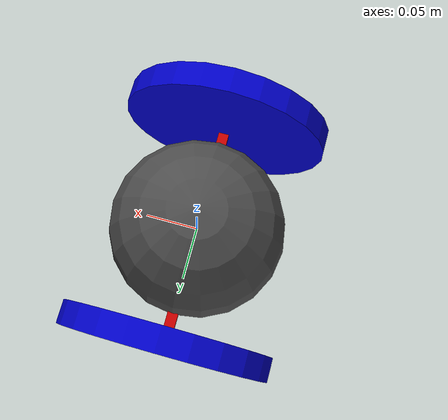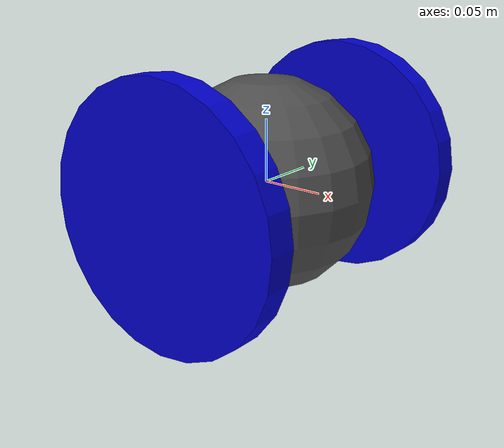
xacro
<?xml version="1.0"?>

<robot name="simple_robot" xmlns:xacro="http://www.ros.org/wiki/xacro">

  <!--quick settings - robot partials(wheels) values-->
  <xacro:property name="wheelLen" value="0.022" />
  <xacro:property name="wheelRad" value="0.1" />

  <!--default inertial macro-->
  <xacro:macro name="default_inertial" params="mass">
    <inertial>
      <mass value="${mass}" />
      <inertia ixx="0.0" ixy="0.0" ixz="0.0" iyy="0.0" iyz="0.0" izz="0.0" />
    </inertial>
  </xacro:macro>

<!--modeling robot body-->

  <link name="base_link">
    <visual>
      <geometry>
        <box size="0.01 0.22 0.01"/>
      </geometry>
      <origin rpy="0 0 0" xyz="0 0 0"/>
      <material name="red">
        <color rgba="0.8 0.0 0.0 1.0"/>
      </material>
    </visual>
    <collision>
      <geometry>
        <box size="0.01 0.22 0.01"/>
      </geometry>
    </collision>
    <xacro:default_inertial mass="1.0"/>
  </link>

  <link name="left_wheel">
    <visual>
      <geometry>
        <cylinder length="${wheelLen}" radius="${wheelRad}"/>
      </geometry>
      <origin rpy="0 0 0" xyz="0 0 0"/>
      <material name="blue">
        <color rgba="0.0 0.0 0.8 1.0"/>
      </material>
    </visual>
    <collision>
      <geometry>
        <cylinder length="${wheelLen}" radius="${wheelRad}"/>
      </geometry>
      <surface>
        <friction>
          <ode>
            <mu>1000000</mu>
            <mu2>100</mu2>
            <slip1>0</slip1>
            <slip2>0</slip2>
          </ode>
        </friction>
      </surface>
    </collision>
    <xacro:default_inertial mass="3.0"/>
  </link>

  <joint name="base_to_left_wheel" type="continuous">
    <parent link="base_link"/>
    <child link="left_wheel"/>
    <origin xyz="0 0.110 0" rpy="1.5708 0 0"/>
    <axis xyz="0 0 1" />
  </joint>

  <link name="right_wheel">
    <visual>
      <geometry>
        <cylinder length="${wheelLen}" radius="${wheelRad}"/>
      </geometry>
      <origin rpy="0 0 0" xyz="0 0 0"/>
      <material name="blue">
        <color rgba="0.0 0.0 0.8 1.0"/>
      </material>
    </visual>
    <collision>
      <geometry>
        <cylinder length="${wheelLen}" radius="${wheelRad}"/>
      </geometry>
      <surface>
        <friction>
          <ode>
            <mu>1000000</mu>
            <mu2>100</mu2>
            <slip1>0</slip1>
            <slip2>0</slip2>
          </ode>
        </friction>
      </surface>
    </collision>
    <xacro:default_inertial mass="3.0"/>
  </link>

  <joint name="base_to_right_wheel" type="continuous">
    <parent link="base_link"/>
    <child link="right_wheel"/>
    <origin xyz="0 -0.110 0" rpy="-1.5708 0 0"/>
    <axis xyz="0 0 1" />
  </joint>

  <link name="body_shphere">
    <visual>
      <geometry>
        <sphere radius="0.085"/>
      </geometry>
      <origin rpy="0 0 0" xyz="0 0 0"/>
      <material name="darkgray">
        <color rgba="0.3 0.3 0.3 1.0"/>
      </material>
    </visual>
    <xacro:default_inertial mass="8.0"/>
  </link>

  <joint name="base_to_body_shphere" type="fixed">
    <parent link="base_link"/>
    <child link="body_shphere"/>
    <origin xyz="0 0 0" rpy="0 0 0"/>
  </joint>

  <!--gazebo plugin-->
  <gazebo>
    <plugin name="differential_drive_controller" filename="libgazebo_ros_diff_drive.so">
      <alwaysOn>true</alwaysOn>
      <updateRate>30</updateRate>
      <leftJoint>base_to_left_wheel</leftJoint>
      <rightJoint>base_to_right_wheel</rightJoint>
      <wheelSeparation>0.23</wheelSeparation>
      <wheelDiameter>0.092</wheelDiameter>
      <torque>20</torque>
      <commandTopic>/cmd_vel_mux/input/teleop</commandTopic>
      <odometryTopic>odom</odometryTopic>
      <odometryFrame>odom</odometryFrame>
      <robotBaseFrame>base_link</robotBaseFrame>
   </plugin>
  </gazebo>
</robot>
